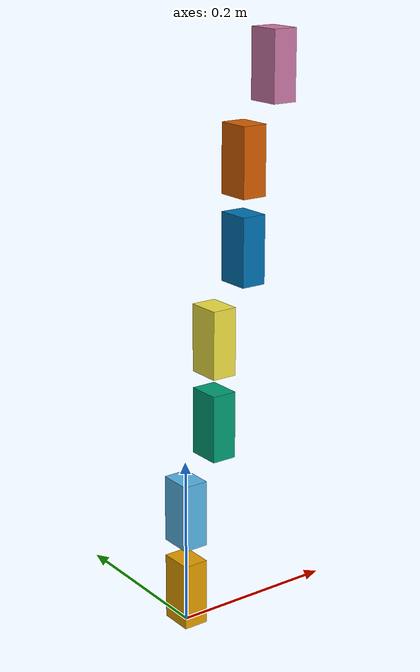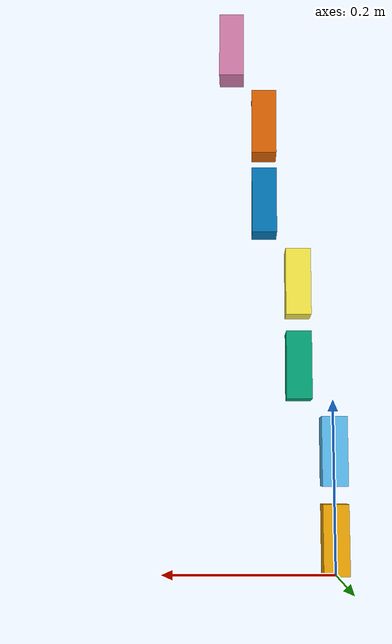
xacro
<?xml version="1.0"?>
<robot xmlns:xacro="http://www.ros.org/wiki/xacro" name="AcceptanceRobot">
<xacro:arg name="segment_height" default="0.10"/>
<link name="link0">
<inertial><origin xyz="0 0 0.04"/><mass value="1"/><inertia ixx="0.002" iyy="0.002" izz="0.001" ixy="0" ixz="0" iyz="0"/></inertial>
<visual><origin xyz="0 0 0.04"/><geometry><box size="0.03 0.04 0.08"/></geometry></visual>
<collision><origin xyz="0 0 0.04"/><geometry><box size="0.03 0.04 0.08"/></geometry></collision>
</link>
<link name="link1">
<inertial><origin xyz="0 0 0.04"/><mass value="1"/><inertia ixx="0.002" iyy="0.002" izz="0.001" ixy="0" ixz="0" iyz="0"/></inertial>
<visual><origin xyz="0 0 0.04"/><geometry><box size="0.03 0.04 0.08"/></geometry></visual>
<collision><origin xyz="0 0 0.04"/><geometry><box size="0.03 0.04 0.08"/></geometry></collision>
</link>
<link name="link2">
<inertial><origin xyz="0 0 0.04"/><mass value="1"/><inertia ixx="0.002" iyy="0.002" izz="0.001" ixy="0" ixz="0" iyz="0"/></inertial>
<visual><origin xyz="0 0 0.04"/><geometry><box size="0.03 0.04 0.08"/></geometry></visual>
<collision><origin xyz="0 0 0.04"/><geometry><box size="0.03 0.04 0.08"/></geometry></collision>
</link>
<link name="link3">
<inertial><origin xyz="0 0 0.04"/><mass value="1"/><inertia ixx="0.002" iyy="0.002" izz="0.001" ixy="0" ixz="0" iyz="0"/></inertial>
<visual><origin xyz="0 0 0.04"/><geometry><box size="0.03 0.04 0.08"/></geometry></visual>
<collision><origin xyz="0 0 0.04"/><geometry><box size="0.03 0.04 0.08"/></geometry></collision>
</link>
<link name="link4">
<inertial><origin xyz="0 0 0.04"/><mass value="1"/><inertia ixx="0.002" iyy="0.002" izz="0.001" ixy="0" ixz="0" iyz="0"/></inertial>
<visual><origin xyz="0 0 0.04"/><geometry><box size="0.03 0.04 0.08"/></geometry></visual>
<collision><origin xyz="0 0 0.04"/><geometry><box size="0.03 0.04 0.08"/></geometry></collision>
</link>
<link name="link5">
<inertial><origin xyz="0 0 0.04"/><mass value="1"/><inertia ixx="0.002" iyy="0.002" izz="0.001" ixy="0" ixz="0" iyz="0"/></inertial>
<visual><origin xyz="0 0 0.04"/><geometry><box size="0.03 0.04 0.08"/></geometry></visual>
<collision><origin xyz="0 0 0.04"/><geometry><box size="0.03 0.04 0.08"/></geometry></collision>
</link>
<link name="link6">
<inertial><origin xyz="0 0 0.04"/><mass value="1"/><inertia ixx="0.002" iyy="0.002" izz="0.001" ixy="0" ixz="0" iyz="0"/></inertial>
<visual><origin xyz="0 0 0.04"/><geometry><box size="0.03 0.04 0.08"/></geometry></visual>
<collision><origin xyz="0 0 0.04"/><geometry><box size="0.03 0.04 0.08"/></geometry></collision>
</link>
<joint name="joint1" type="revolute"><parent link="link0"/><child link="link1"/>
<origin xyz="0 0 $(arg segment_height)" rpy="0 0 0"/><axis xyz="0 0 1"/><limit lower="-2" upper="2" effort="100" velocity="1"/></joint>
<joint name="joint2" type="revolute"><parent link="link1"/><child link="link2"/>
<origin xyz="0.04 0 $(arg segment_height)" rpy="0 0 0"/><axis xyz="0 1 0"/><limit lower="-2" upper="2" effort="100" velocity="1"/></joint>
<joint name="joint3" type="revolute"><parent link="link2"/><child link="link3"/>
<origin xyz="0 0 $(arg segment_height)" rpy="0 0 0"/><axis xyz="0 1 0"/><limit lower="-2" upper="2" effort="100" velocity="1"/></joint>
<joint name="joint4" type="revolute"><parent link="link3"/><child link="link4"/>
<origin xyz="0.04 0 $(arg segment_height)" rpy="0 0 0"/><axis xyz="1 0 0"/><limit lower="-2" upper="2" effort="100" velocity="1"/></joint>
<joint name="joint5" type="revolute"><parent link="link4"/><child link="link5"/>
<origin xyz="0 0 $(arg segment_height)" rpy="0 0 0"/><axis xyz="0 1 0"/><limit lower="-2" upper="2" effort="100" velocity="1"/></joint>
<joint name="joint6" type="revolute"><parent link="link5"/><child link="link6"/>
<origin xyz="0.04 0 $(arg segment_height)" rpy="0 0 0"/><axis xyz="1 0 0"/><limit lower="-2" upper="2" effort="100" velocity="1"/></joint>
</robot>
